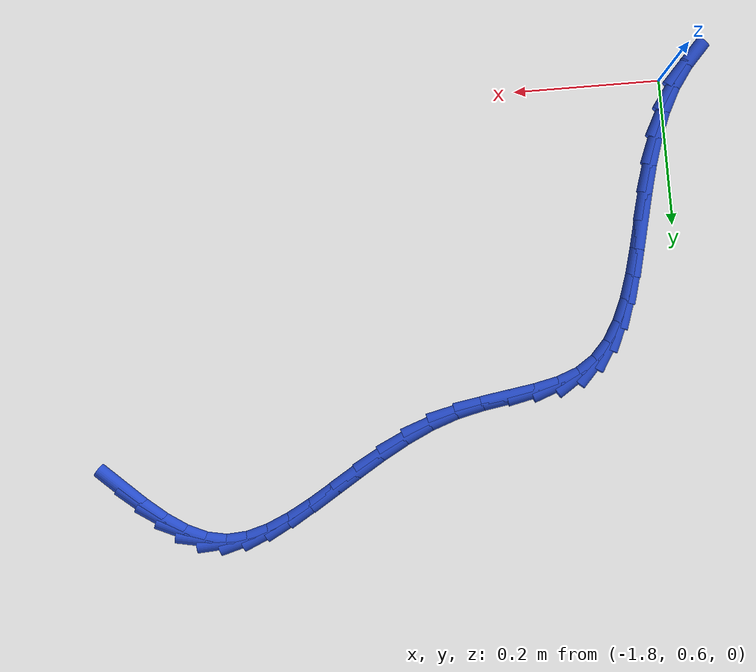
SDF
<sdf version="1.6">
 <world name="default">
  <model name="ground_plane">
   <static>1</static>
   <link name="link">
    <collision name="collision">
     <geometry><plane><normal>0 0 1</normal><size>100 100</size></plane></geometry>
     <surface><friction><ode><mu>100</mu><mu2>50</mu2></ode></friction></surface>
    </collision>
    <visual name="visual">
     <cast_shadows>0</cast_shadows>
     <geometry><plane><normal>0 0 1</normal><size>100 100</size></plane></geometry>
     <material>
      <script><uri>file://media/materials/scripts/gazebo.material</uri><name>Gazebo/WhiteGlow</name></script>
     </material>
    </visual>
   </link>
  </model>
  <model name="line">
   <link name="link_49">
    <pose>-1.028667833062061 1.0971463562583508 0.01 0 1.57 -0.7395137759778166</pose>
    <collision name="collision">
     <geometry><cylinder><radius>0.01</radius><length>0.08</length></cylinder></geometry>
    </collision>
    <visual name="visual">
     <material>
      <script><name>Gazebo/Blue</name><uri>file://media/materials/scripts/gazebo.material</uri></script>
     </material>
     <geometry><cylinder><radius>0.01</radius><length>0.08</length></cylinder></geometry>
    </visual>
   </link>
   <link name="link_50">
    <pose>-1.0556719498073537 1.1217794662966944 0.01 0 1.57 -0.6815156451526158</pose>
    <collision name="collision">
     <geometry><cylinder><radius>0.01</radius><length>0.08</length></cylinder></geometry>
    </collision>
    <visual name="visual">
     <material>
      <script><name>Gazebo/Blue</name><uri>file://media/materials/scripts/gazebo.material</uri></script>
     </material>
     <geometry><cylinder><radius>0.01</radius><length>0.08</length></cylinder></geometry>
    </visual>
   </link>
   <link name="link_51">
    <pose>-1.0825408862503916 1.1435747744962932 0.01 0 1.57 -0.5795072064655616</pose>
    <collision name="collision">
     <geometry><cylinder><radius>0.01</radius><length>0.08</length></cylinder></geometry>
    </collision>
    <visual name="visual">
     <material>
      <script><name>Gazebo/Blue</name><uri>file://media/materials/scripts/gazebo.material</uri></script>
     </material>
     <geometry><cylinder><radius>0.01</radius><length>0.08</length></cylinder></geometry>
    </visual>
   </link>
   <link name="link_52">
    <pose>-1.1094794771758394 1.1612051219768484 0.01 0 1.57 -0.4195591477306667</pose>
    <collision name="collision">
     <geometry><cylinder><radius>0.01</radius><length>0.08</length></cylinder></geometry>
    </collision>
    <visual name="visual">
     <material>
      <script><name>Gazebo/Blue</name><uri>file://media/materials/scripts/gazebo.material</uri></script>
     </material>
     <geometry><cylinder><radius>0.01</radius><length>0.08</length></cylinder></geometry>
    </visual>
   </link>
   <link name="link_53">
    <pose>-1.1366925573683622 1.173343349858063 0.01 0 1.57 -0.1902161290354234</pose>
    <collision name="collision">
     <geometry><cylinder><radius>0.01</radius><length>0.08</length></cylinder></geometry>
    </collision>
    <visual name="visual">
     <material>
      <script><name>Gazebo/Blue</name><uri>file://media/materials/scripts/gazebo.material</uri></script>
     </material>
     <geometry><cylinder><radius>0.01</radius><length>0.08</length></cylinder></geometry>
    </visual>
   </link>
   <link name="link_54">
    <pose>-1.1643841514576756 1.1786751993157139 0.01 0 1.57 0.06627865184186088</pose>
    <collision name="collision">
     <geometry><cylinder><radius>0.01</radius><length>0.08</length></cylinder></geometry>
    </collision>
    <visual name="visual">
     <material>
      <script><name>Gazebo/Blue</name><uri>file://media/materials/scripts/gazebo.material</uri></script>
     </material>
     <geometry><cylinder><radius>0.01</radius><length>0.08</length></cylinder></geometry>
    </visual>
   </link>
   <link name="link_55">
    <pose>-1.1927011828365597 1.1767956316196888 0.01 0 1.57 0.26930037695229053</pose>
    <collision name="collision">
     <geometry><cylinder><radius>0.01</radius><length>0.08</length></cylinder></geometry>
    </collision>
    <visual name="visual">
     <material>
      <script><name>Gazebo/Blue</name><uri>file://media/materials/scripts/gazebo.material</uri></script>
     </material>
     <geometry><cylinder><radius>0.01</radius><length>0.08</length></cylinder></geometry>
    </visual>
   </link>
   <link name="link_56">
    <pose>-1.2216968055424162 1.168792692720583 0.01 0 1.57 0.4095146152992243</pose>
    <collision name="collision">
     <geometry><cylinder><radius>0.01</radius><length>0.08</length></cylinder></geometry>
    </collision>
    <visual name="visual">
     <material>
      <script><name>Gazebo/Blue</name><uri>file://media/materials/scripts/gazebo.material</uri></script>
     </material>
     <geometry><cylinder><radius>0.01</radius><length>0.08</length></cylinder></geometry>
    </visual>
   </link>
   <link name="link_57">
    <pose>-1.2514154593893008 1.155893184704535 0.01 0 1.57 0.49784079139923687</pose>
    <collision name="collision">
     <geometry><cylinder><radius>0.01</radius><length>0.08</length></cylinder></geometry>
    </collision>
    <visual name="visual">
     <material>
      <script><name>Gazebo/Blue</name><uri>file://media/materials/scripts/gazebo.material</uri></script>
     </material>
     <geometry><cylinder><radius>0.01</radius><length>0.08</length></cylinder></geometry>
    </visual>
   </link>
   <link name="link_58">
    <pose>-1.281901584191268 1.1393239096576835 0.01 0 1.57 0.5458852361291224</pose>
    <collision name="collision">
     <geometry><cylinder><radius>0.01</radius><length>0.08</length></cylinder></geometry>
    </collision>
    <visual name="visual">
     <material>
      <script><name>Gazebo/Blue</name><uri>file://media/materials/scripts/gazebo.material</uri></script>
     </material>
     <geometry><cylinder><radius>0.01</radius><length>0.08</length></cylinder></geometry>
    </visual>
   </link>
   <link name="link_59">
    <pose>-1.3131996197623732 1.1203116696661655 0.01 0 1.57 0.561543948157743</pose>
    <collision name="collision">
     <geometry><cylinder><radius>0.01</radius><length>0.08</length></cylinder></geometry>
    </collision>
    <visual name="visual">
     <material>
      <script><name>Gazebo/Blue</name><uri>file://media/materials/scripts/gazebo.material</uri></script>
     </material>
     <geometry><cylinder><radius>0.01</radius><length>0.08</length></cylinder></geometry>
    </visual>
   </link>
   <link name="link_60">
    <pose>-1.3453540059166718 1.10008326681612 0.01 0 1.57 0.5489320883970408</pose>
    <collision name="collision">
     <geometry><cylinder><radius>0.01</radius><length>0.08</length></cylinder></geometry>
    </collision>
    <visual name="visual">
     <material>
      <script><name>Gazebo/Blue</name><uri>file://media/materials/scripts/gazebo.material</uri></script>
     </material>
     <geometry><cylinder><radius>0.01</radius><length>0.08</length></cylinder></geometry>
    </visual>
   </link>
   <link name="link_61">
    <pose>-1.378409182468218 1.0798655031936848 0.01 0 1.57 0.5091460350019192</pose>
    <collision name="collision">
     <geometry><cylinder><radius>0.01</radius><length>0.08</length></cylinder></geometry>
    </collision>
    <visual name="visual">
     <material>
      <script><name>Gazebo/Blue</name><uri>file://media/materials/scripts/gazebo.material</uri></script>
     </material>
     <geometry><cylinder><radius>0.01</radius><length>0.08</length></cylinder></geometry>
    </visual>
   </link>
   <link name="link_62">
    <pose>-1.4124095892310684 1.060885180884998 0.01 0 1.57 0.4410155865946592</pose>
    <collision name="collision">
     <geometry><cylinder><radius>0.01</radius><length>0.08</length></cylinder></geometry>
    </collision>
    <visual name="visual">
     <material>
      <script><name>Gazebo/Blue</name><uri>file://media/materials/scripts/gazebo.material</uri></script>
     </material>
     <geometry><cylinder><radius>0.01</radius><length>0.08</length></cylinder></geometry>
    </visual>
   </link>
   <link name="link_63">
    <pose>-1.4473996660192763 1.0443691019761978 0.01 0 1.57 0.3420258116617876</pose>
    <collision name="collision">
     <geometry><cylinder><radius>0.01</radius><length>0.08</length></cylinder></geometry>
    </collision>
    <visual name="visual">
     <material>
      <script><name>Gazebo/Blue</name><uri>file://media/materials/scripts/gazebo.material</uri></script>
     </material>
     <geometry><cylinder><radius>0.01</radius><length>0.08</length></cylinder></geometry>
    </visual>
   </link>
   <link name="link_64">
    <pose>-1.483423780895928 1.0315438752486528 0.01 0 1.57 0.2289081516052746</pose>
    <collision name="collision">
     <geometry><cylinder><radius>0.01</radius><length>0.08</length></cylinder></geometry>
    </collision>
    <visual name="visual">
     <material>
      <script><name>Gazebo/Blue</name><uri>file://media/materials/scripts/gazebo.material</uri></script>
     </material>
     <geometry><cylinder><radius>0.01</radius><length>0.08</length></cylinder></geometry>
    </visual>
   </link>
   <link name="link_65">
    <pose>-1.5202745772567352 1.0229579363702708 0.01 0 1.57 0.16216338841943173</pose>
    <collision name="collision">
     <geometry><cylinder><radius>0.01</radius><length>0.08</length></cylinder></geometry>
    </collision>
    <visual name="visual">
     <material>
      <script><name>Gazebo/Blue</name><uri>file://media/materials/scripts/gazebo.material</uri></script>
     </material>
     <geometry><cylinder><radius>0.01</radius><length>0.08</length></cylinder></geometry>
    </visual>
   </link>
   <link name="link_66">
    <pose>-1.5569286961549798 1.0169613236292652 0.01 0 1.57 0.1547512399086623</pose>
    <collision name="collision">
     <geometry><cylinder><radius>0.01</radius><length>0.08</length></cylinder></geometry>
    </collision>
    <visual name="visual">
     <material>
      <script><name>Gazebo/Blue</name><uri>file://media/materials/scripts/gazebo.material</uri></script>
     </material>
     <geometry><cylinder><radius>0.01</radius><length>0.08</length></cylinder></geometry>
    </visual>
   </link>
   <link name="link_67">
    <pose>-1.5921977265284961 1.011459407303419 0.01 0 1.57 0.2138891137005627</pose>
    <collision name="collision">
     <geometry><cylinder><radius>0.01</radius><length>0.08</length></cylinder></geometry>
    </collision>
    <visual name="visual">
     <material>
      <script><name>Gazebo/Blue</name><uri>file://media/materials/scripts/gazebo.material</uri></script>
     </material>
     <geometry><cylinder><radius>0.01</radius><length>0.08</length></cylinder></geometry>
    </visual>
   </link>
   <link name="link_68">
    <pose>-1.624893257315119 1.004357557670516 0.01 0 1.57 0.3571426794130867</pose>
    <collision name="collision">
     <geometry><cylinder><radius>0.01</radius><length>0.08</length></cylinder></geometry>
    </collision>
    <visual name="visual">
     <material>
      <script><name>Gazebo/Blue</name><uri>file://media/materials/scripts/gazebo.material</uri></script>
     </material>
     <geometry><cylinder><radius>0.01</radius><length>0.08</length></cylinder></geometry>
    </visual>
   </link>
   <link name="link_69">
    <pose>-1.6538268774526825 0.9935611450083397 0.01 0 1.57 0.5926429524447806</pose>
    <collision name="collision">
     <geometry><cylinder><radius>0.01</radius><length>0.08</length></cylinder></geometry>
    </collision>
    <visual name="visual">
     <material>
      <script><name>Gazebo/Blue</name><uri>file://media/materials/scripts/gazebo.material</uri></script>
     </material>
     <geometry><cylinder><radius>0.01</radius><length>0.08</length></cylinder></geometry>
    </visual>
   </link>
   <link name="link_70">
    <pose>-1.678013033209185 0.9772744237562716 0.01 0 1.57 0.8335422051172552</pose>
    <collision name="collision">
     <geometry><cylinder><radius>0.01</radius><length>0.08</length></cylinder></geometry>
    </collision>
    <visual name="visual">
     <material>
      <script><name>Gazebo/Blue</name><uri>file://media/materials/scripts/gazebo.material</uri></script>
     </material>
     <geometry><cylinder><radius>0.01</radius><length>0.08</length></cylinder></geometry>
    </visual>
   </link>
   <link name="link_71">
    <pose>-1.6977290541005878 0.9555623442450272 0.01 0 1.57 1.0249874786317912</pose>
    <collision name="collision">
     <geometry><cylinder><radius>0.01</radius><length>0.08</length></cylinder></geometry>
    </collision>
    <visual name="visual">
     <material>
      <script><name>Gazebo/Blue</name><uri>file://media/materials/scripts/gazebo.material</uri></script>
     </material>
     <geometry><cylinder><radius>0.01</radius><length>0.08</length></cylinder></geometry>
    </visual>
   </link>
   <link name="link_72">
    <pose>-1.71373745176025 0.9292047101964361 0.01 0 1.57 1.1627765604413665</pose>
    <collision name="collision">
     <geometry><cylinder><radius>0.01</radius><length>0.08</length></cylinder></geometry>
    </collision>
    <visual name="visual">
     <material>
      <script><name>Gazebo/Blue</name><uri>file://media/materials/scripts/gazebo.material</uri></script>
     </material>
     <geometry><cylinder><radius>0.01</radius><length>0.08</length></cylinder></geometry>
    </visual>
   </link>
   <link name="link_73">
    <pose>-1.7268017434008651 0.8989828069240285 0.01 0 1.57 1.254946320624883</pose>
    <collision name="collision">
     <geometry><cylinder><radius>0.01</radius><length>0.08</length></cylinder></geometry>
    </collision>
    <visual name="visual">
     <material>
      <script><name>Gazebo/Blue</name><uri>file://media/materials/scripts/gazebo.material</uri></script>
     </material>
     <geometry><cylinder><radius>0.01</radius><length>0.08</length></cylinder></geometry>
    </visual>
   </link>
   <link name="link_74">
    <pose>-1.737685446235127 0.8656779197413339 0.01 0 1.57 1.3109402642755787</pose>
    <collision name="collision">
     <geometry><cylinder><radius>0.01</radius><length>0.08</length></cylinder></geometry>
    </collision>
    <visual name="visual">
     <material>
      <script><name>Gazebo/Blue</name><uri>file://media/materials/scripts/gazebo.material</uri></script>
     </material>
     <geometry><cylinder><radius>0.01</radius><length>0.08</length></cylinder></geometry>
    </visual>
   </link>
   <link name="link_75">
    <pose>-1.7471520774757299 0.830071333961883 0.01 0 1.57 1.3377334411269795</pose>
    <collision name="collision">
     <geometry><cylinder><radius>0.01</radius><length>0.08</length></cylinder></geometry>
    </collision>
    <visual name="visual">
     <material>
      <script><name>Gazebo/Blue</name><uri>file://media/materials/scripts/gazebo.material</uri></script>
     </material>
     <geometry><cylinder><radius>0.01</radius><length>0.08</length></cylinder></geometry>
    </visual>
   </link>
   <link name="link_76">
    <pose>-1.7559651543353678 0.7929443348992055 0.01 0 1.57 1.3393713040512603</pose>
    <collision name="collision">
     <geometry><cylinder><radius>0.01</radius><length>0.08</length></cylinder></geometry>
    </collision>
    <visual name="visual">
     <material>
      <script><name>Gazebo/Blue</name><uri>file://media/materials/scripts/gazebo.material</uri></script>
     </material>
     <geometry><cylinder><radius>0.01</radius><length>0.08</length></cylinder></geometry>
    </visual>
   </link>
   <link name="link_77">
    <pose>-1.7648881940267336 0.7550782078668307 0.01 0 1.57 1.317362411852407</pose>
    <collision name="collision">
     <geometry><cylinder><radius>0.01</radius><length>0.08</length></cylinder></geometry>
    </collision>
    <visual name="visual">
     <material>
      <script><name>Gazebo/Blue</name><uri>file://media/materials/scripts/gazebo.material</uri></script>
     </material>
     <geometry><cylinder><radius>0.01</radius><length>0.08</length></cylinder></geometry>
    </visual>
   </link>
   <link name="link_78">
    <pose>-1.774684713762523 0.7172542381782895 0.01 0 1.57 1.2710945031337908</pose>
    <collision name="collision">
     <geometry><cylinder><radius>0.01</radius><length>0.08</length></cylinder></geometry>
    </collision>
    <visual name="visual">
     <material>
      <script><name>Gazebo/Blue</name><uri>file://media/materials/scripts/gazebo.material</uri></script>
     </material>
     <geometry><cylinder><radius>0.01</radius><length>0.08</length></cylinder></geometry>
    </visual>
   </link>
   <link name="link_79">
    <pose>-1.7861182307554286 0.6802537111471112 0.01 0 1.57 1.1982128922027853</pose>
    <collision name="collision">
     <geometry><cylinder><radius>0.01</radius><length>0.08</length></cylinder></geometry>
    </collision>
    <visual name="visual">
     <material>
      <script><name>Gazebo/Blue</name><uri>file://media/materials/scripts/gazebo.material</uri></script>
     </material>
     <geometry><cylinder><radius>0.01</radius><length>0.08</length></cylinder></geometry>
    </visual>
   </link>
   <link name="link_80">
    <pose>-1.7999522622181447 0.6448579120868259 0.01 0 1.57 1.095268180467855</pose>
    <collision name="collision">
     <geometry><cylinder><radius>0.01</radius><length>0.08</length></cylinder></geometry>
    </collision>
    <visual name="visual">
     <material>
      <script><name>Gazebo/Blue</name><uri>file://media/materials/scripts/gazebo.material</uri></script>
     </material>
     <geometry><cylinder><radius>0.01</radius><length>0.08</length></cylinder></geometry>
    </visual>
   </link>
   <link name="link_81">
    <pose>-1.8169503253633654 0.6118481263109639 0.01 0 1.57 0.9611433987964741</pose>
    <collision name="collision">
     <geometry><cylinder><radius>0.01</radius><length>0.08</length></cylinder></geometry>
    </collision>
    <visual name="visual">
     <material>
      <script><name>Gazebo/Blue</name><uri>file://media/materials/scripts/gazebo.material</uri></script>
     </material>
     <geometry><cylinder><radius>0.01</radius><length>0.08</length></cylinder></geometry>
    </visual>
   </link>
   <link name="link_82">
    <pose>-1.8378221503051677 0.5819630261401841 0.01 0 1.57 0.8306837052279497</pose>
    <collision name="collision">
     <geometry><cylinder><radius>0.01</radius><length>0.08</length></cylinder></geometry>
    </collision>
    <visual name="visual">
     <material>
      <script><name>Gazebo/Blue</name><uri>file://media/materials/scripts/gazebo.material</uri></script>
     </material>
     <geometry><cylinder><radius>0.01</radius><length>0.08</length></cylinder></geometry>
    </visual>
   </link>
  </model>
 </world>
</sdf>
